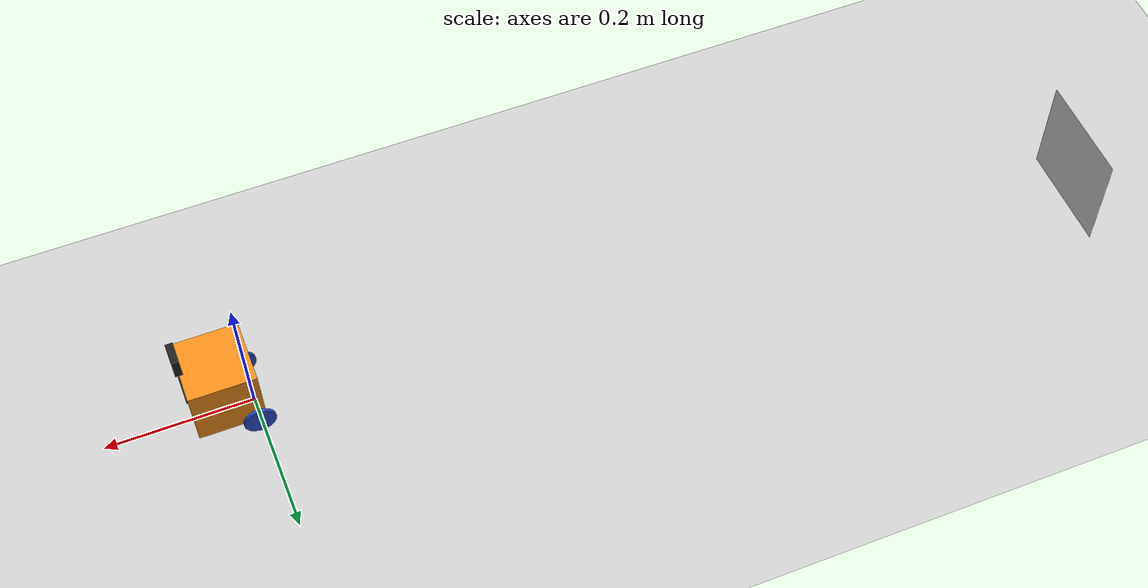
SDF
<sdf version="1.7">
 <world name="default">
  <light name="sun" type="directional">
   <pose>0 0 10 0 -0 0</pose>
   <diffuse>0.8 0.8 0.8 1</diffuse>
   <specular>0.2 0.2 0.2 1</specular>
   <attenuation>
    <range>1000</range>
    <constant>0.9</constant>
    <linear>0.01</linear>
    <quadratic>0.001</quadratic>
   </attenuation>
   <direction>-0.5 0.1 -0.9</direction>
   <spot><inner_angle>0</inner_angle><outer_angle>0</outer_angle><falloff>0</falloff></spot>
  </light>
  <model name="ground_plane">
   <static>1</static>
   <link name="link">
    <collision name="collision">
     <geometry><plane><normal>0 0 1</normal><size>100 100</size></plane></geometry>
     <surface>
      <contact><collide_bitmask>65535</collide_bitmask></contact>
      <friction><ode><mu>100</mu><mu2>50</mu2></ode></friction>
     </surface>
    </collision>
    <visual name="visual">
     <cast_shadows>0</cast_shadows>
     <geometry><plane><normal>0 0 1</normal><size>100 100</size></plane></geometry>
     <material>
      <script><uri>file://media/materials/scripts/gazebo.material</uri><name>Gazebo/Grey</name></script>
     </material>
    </visual>
   </link>
  </model>
  <gravity>0 0 -9.8</gravity>
  <magnetic_field>6e-06 2.3e-05 -4.2e-05</magnetic_field>
  <atmosphere type="adiabatic"/>
  <physics type="ode">
   <max_step_size>0.001</max_step_size>
   <real_time_factor>1</real_time_factor>
   <real_time_update_rate>1000</real_time_update_rate>
  </physics>
  <scene><ambient>0.4 0.4 0.4 1</ambient><background>0.7 0.7 0.7 1</background><shadows>1</shadows></scene>
  <audio><device>default</device></audio>
  <spherical_coordinates>
   <surface_model>EARTH_WGS84</surface_model>
   <latitude_deg>0</latitude_deg>
   <longitude_deg>0</longitude_deg>
   <elevation>0</elevation>
   <heading_deg>0</heading_deg>
  </spherical_coordinates>
  <model name="my_robot">
   <link name="base_link">
    <inertial>
     <pose>0.03525 0 0.044049 0 -0 0</pose>
     <mass>0.51</mass>
     <inertia>
      <ixx>0.000699357</ixx>
      <ixy>0</ixy>
      <ixz>1.18873e-05</ixz>
      <iyy>0.000705485</iyy>
      <iyz>0</iyz>
      <izz>0.000682423</izz>
     </inertia>
    </inertial>
    <collision name="base_link_fixed_joint_lump__chassis_collision">
     <pose>0.03476 0 0.045 0 -0 0</pose>
     <geometry><box><size>0.09 0.09 0.09</size></box></geometry>
    </collision>
    <collision name="base_link_fixed_joint_lump__caster_wheel_collision_1">
     <pose>0.05976 0 -0.0035 0 -0 0</pose>
     <geometry><sphere><radius>0.018</radius></sphere></geometry>
     <surface><friction><ode><mu>0.001</mu><mu2>0.001</mu2></ode></friction></surface>
    </collision>
    <visual name="base_link_fixed_joint_lump__chassis_visual">
     <pose>0.03476 0 0.045 0 -0 0</pose>
     <geometry><box><size>0.09 0.09 0.09</size></box></geometry>
     <material>
      <script><name>Gazebo/Orange</name><uri>file://media/materials/scripts/gazebo.material</uri></script>
     </material>
    </visual>
    <visual name="base_link_fixed_joint_lump__camera_link_visual_1">
     <pose>0.07976 0 0.12 0 -0 0</pose>
     <geometry><box><size>0.01 0.03 0.03</size></box></geometry>
     <material>
      <script><name>Gazebo/Black</name><uri>file://media/materials/scripts/gazebo.material</uri></script>
     </material>
    </visual>
    <visual name="base_link_fixed_joint_lump__camera_link_visual_2">
     <pose>0.07976 0 0.07 0 -0 0</pose>
     <geometry><cylinder><length>0.1</length><radius>0.002</radius></cylinder></geometry>
     <material>
      <script><name>Gazebo/Black</name><uri>file://media/materials/scripts/gazebo.material</uri></script>
     </material>
    </visual>
    <visual name="base_link_fixed_joint_lump__caster_wheel_visual_3">
     <pose>0.05976 0 -0.0035 0 -0 0</pose>
     <geometry><sphere><radius>0.018</radius></sphere></geometry>
     <material>
      <script><name>Gazebo/White</name><uri>file://media/materials/scripts/gazebo.material</uri></script>
     </material>
    </visual>
    <sensor name="camera" type="camera">
     <visualize>1</visualize>
     <update_rate>10</update_rate>
     <camera>
      <horizontal_fov>1.089</horizontal_fov>
      <image><format>R8G8B8</format><width>640</width><height>480</height></image>
      <clip><near>0.05</near><far>8</far></clip>
     </camera>
     <plugin name="camera_controller" filename="libgazebo_ros_camera.so">
      <frame_name>camera_link_optical</frame_name>
     </plugin>
     <pose>0.07976 0 0.12 0 -0 0</pose>
    </sensor>
   </link>
   <joint name="left_wheel_joint" type="revolute">
    <pose relative_to="base_link">0 0.047 0 -1.5708 0 0</pose>
    <parent>base_link</parent>
    <child>left_wheel</child>
    <axis>
     <xyz>0 0 1</xyz>
     <limit><lower>-1e+16</lower><upper>1e+16</upper></limit>
     <dynamics><spring_reference>0</spring_reference><spring_stiffness>0</spring_stiffness></dynamics>
    </axis>
   </joint>
   <link name="left_wheel">
    <pose relative_to="left_wheel_joint">0 0 0 0 -0 0</pose>
    <inertial>
     <mass>0.05</mass>
     <inertia>
      <ixx>5.84479e-06</ixx>
      <ixy>0</ixy>
      <ixz>0</ixz>
      <iyy>5.84479e-06</iyy>
      <iyz>0</iyz>
      <izz>1.15562e-05</izz>
     </inertia>
    </inertial>
    <collision name="left_wheel_collision">
     <geometry><sphere><radius>0.0215</radius></sphere></geometry>
    </collision>
    <visual name="left_wheel_visual">
     <geometry><cylinder><length>0.004</length><radius>0.0215</radius></cylinder></geometry>
     <material>
      <script><name>Gazebo/Blue</name><uri>file://media/materials/scripts/gazebo.material</uri></script>
     </material>
    </visual>
   </link>
   <joint name="right_wheel_joint" type="revolute">
    <pose relative_to="base_link">0 -0.047 0 1.5708 -0 0</pose>
    <parent>base_link</parent>
    <child>right_wheel</child>
    <axis>
     <xyz>0 0 -1</xyz>
     <limit><lower>-1e+16</lower><upper>1e+16</upper></limit>
     <dynamics><spring_reference>0</spring_reference><spring_stiffness>0</spring_stiffness></dynamics>
    </axis>
   </joint>
   <link name="right_wheel">
    <pose relative_to="right_wheel_joint">0 0 0 0 -0 0</pose>
    <inertial>
     <mass>0.05</mass>
     <inertia>
      <ixx>5.84479e-06</ixx>
      <ixy>0</ixy>
      <ixz>0</ixz>
      <iyy>5.84479e-06</iyy>
      <iyz>0</iyz>
      <izz>1.15562e-05</izz>
     </inertia>
    </inertial>
    <collision name="right_wheel_collision">
     <geometry><sphere><radius>0.0215</radius></sphere></geometry>
    </collision>
    <visual name="right_wheel_visual">
     <geometry><cylinder><length>0.004</length><radius>0.0215</radius></cylinder></geometry>
     <material>
      <script><name>Gazebo/Blue</name><uri>file://media/materials/scripts/gazebo.material</uri></script>
     </material>
    </visual>
   </link>
   <static>0</static>
   <plugin name="diff_drive" filename="libgazebo_ros_diff_drive.so">
    <left_joint>left_wheel_joint</left_joint>
    <right_joint>right_wheel_joint</right_joint>
    <wheel_separation>0.297</wheel_separation>
    <wheel_diameter>0.066</wheel_diameter>
    <max_wheel_torque>200</max_wheel_torque>
    <max_wheel_acceleration>10.0</max_wheel_acceleration>
    <odometry_frame>odom</odometry_frame>
    <robot_base_frame>base_link</robot_base_frame>
    <publish_odom>1</publish_odom>
    <publish_odom_tf>1</publish_odom_tf>
    <publish_wheel_tf>1</publish_wheel_tf>
   </plugin>
   <pose>0.002988 -9e-06 0.021499 2.3e-05 -2.5e-05 -0.002169</pose>
  </model>
  <model name="aruco_marker">
   <link name="link">
    <inertial>
     <mass>0.001</mass>
     <inertia>
      <ixx>3.75e-06</ixx>
      <ixy>0</ixy>
      <ixz>0</ixz>
      <iyy>1.875e-06</iyy>
      <iyz>0</iyz>
      <izz>1.875e-06</izz>
     </inertia>
    </inertial>
    <visual name="front_visual">
     <pose>5e-05 0 0 0 -0 0</pose>
     <geometry><box><size>0.0001 0.15 0.15</size></box></geometry>
     <material>
      <script>
       <uri>model://aruco_marker/materials/scripts</uri>
       <uri>model://aruco_marker/materials/textures</uri>
       <name>Marker</name>
      </script>
     </material>
    </visual>
    <visual name="rear_visual">
     <pose>-5e-05 0 0 0 -0 0</pose>
     <geometry><box><size>0.0001 0.15 0.15</size></box></geometry>
    </visual>
    <collision name="collision"><geometry><box><size>0.0001 0.15 0.15</size></box></geometry></collision>
   </link>
   <pose>-1.14684 0.104301 0.074999 8e-06 0.000204 1e-06</pose>
  </model>
 </world>
</sdf>
